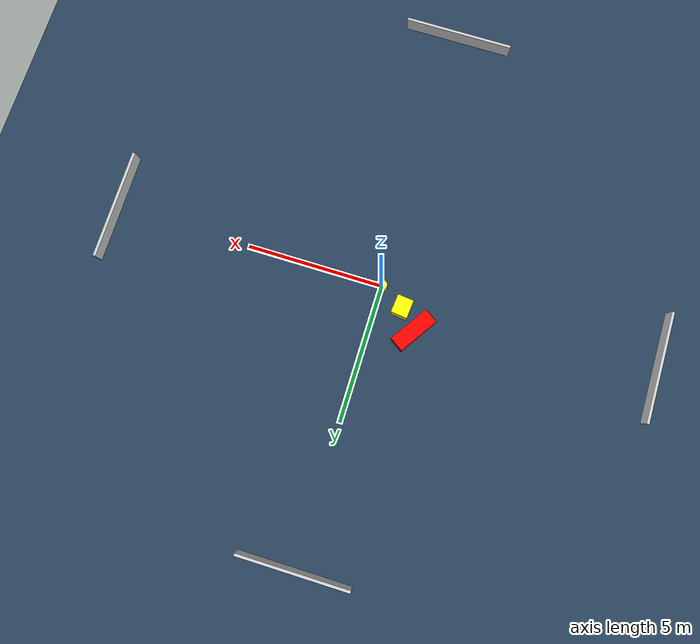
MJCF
<?xml version="1.0" ?>
<mujoco model="generated_environment">
  <option timestep="0.01" integrator="RK4" cone="elliptic"/>
  <default>
    <geom density="1"/>
  </default>
  <asset>
    <texture builtin="gradient" height="3072" name="skybox" rgb1="0.3 0.5 0.7" rgb2="0 0 0" type="skybox" width="512"/>
    <texture builtin="checker" height="300" name="groundplane" rgb1="0.2 0.3 0.4" rgb2="0.1 0.2 0.3" type="2d" width="300"/>
    <material name="groundplane" reflectance="0.2" texrepeat="5 5" texture="groundplane"/>
  </asset>
  <worldbody>
    <light dir="0 0 -1" directional="true" pos="0 0 1.5"/>
    <geom condim="3" friction="0.5 0.005 0.001" material="groundplane" name="floor" pos="0 0 0" size="0 0 0.05" type="plane"/>
    <body name="walls">
      <geom name="wall_1" condim="4" pos="-10.0 0.0 0.3" rgba="0.800000011920929 0.800000011920929 0.800000011920929 1.0" size="0.05 2.0 0.3" type="box"/>
      <geom name="wall_2" condim="4" pos="10.0 0.0 0.3" rgba="0.800000011920929 0.800000011920929 0.800000011920929 1.0" size="0.05 2.0 0.3" type="box"/>
      <geom name="wall_3" condim="4" pos="0.0 -10.0 0.3" rgba="0.800000011920929 0.800000011920929 0.800000011920929 1.0" size="2.0 0.05 0.3" type="box"/>
      <geom name="wall_4" condim="4" pos="0.0 10.0 0.3" rgba="0.800000011920929 0.800000011920929 0.800000011920929 1.0" size="2.0 0.05 0.3" type="box"/>
    </body>
    <body name="robot">
      <joint name="joint_x" type="slide" pos="0 0 0" axis="1 0 0"/>
      <joint name="joint_y" type="slide" pos="0 0 0" axis="0 1 0"/>
      <geom name="robot" type="cylinder" pos="0.0 0.0 0.2" size="0.2 0.2 0.0" mass="5.0" friction="1.0 0.005 0.0001" condim="4" rgba="1.0 1.0 0.0 1.0"/>
    </body>
    <body name="obstacle_1_movable">
      <geom name="obstacle_1_movable" condim="4" pos="-0.9246115695302436 0.5538618319760445 0.3" euler="0 0 84.25812117457905" friction="0.0 0.005 0.001" rgba="1.0 1.0 0.0 1.0" size="0.3365648098856199 0.29745773181605173 0.3" type="box" mass="0.1"/>
      <joint type="free"/>
    </body>
    <body name="obstacle_2_static">
      <geom name="obstacle_2_static" condim="4" pos="-1.5352068361428621 1.2335261646794613 0.3" euler="0 0 56.399132111214065" friction="0.0 0.005 0.001" rgba="1.0 0.0 0.0 1.0" size="0.7907267121975199 0.2793447379272592 0.3" type="box"/>
    </body>
  </worldbody>
  <actuator>
    <motor name="actuator_x" joint="joint_x" gear="1" ctrlrange="-1 1"/>
    <motor name="actuator_y" joint="joint_y" gear="1" ctrlrange="-1 1"/>
  </actuator>
</mujoco>
